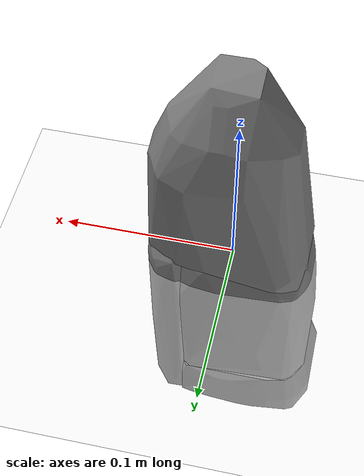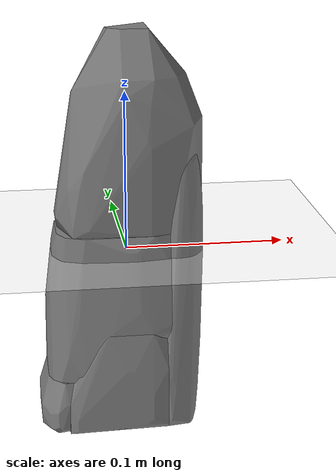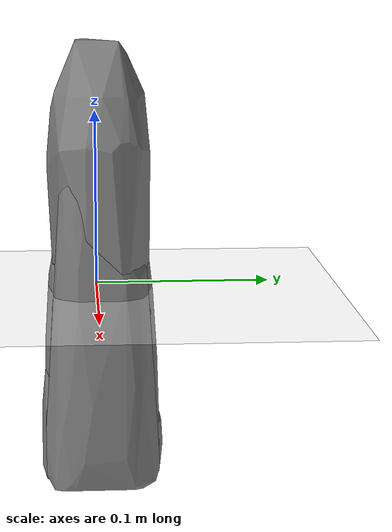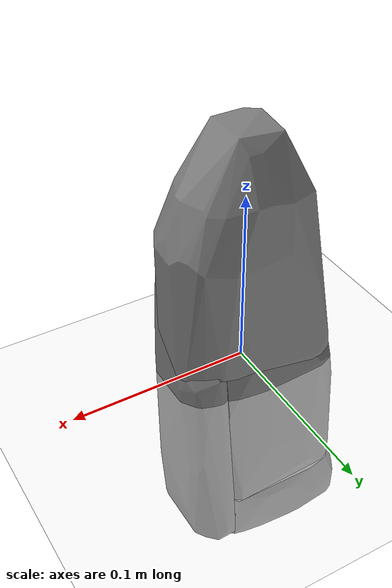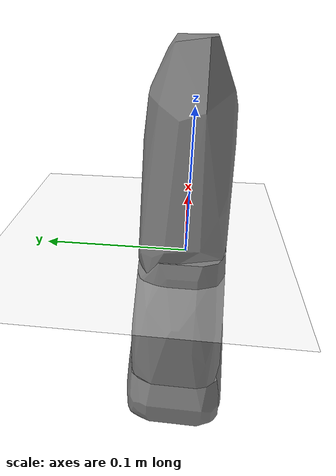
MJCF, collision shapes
<mujoco model="bleach_cleanser">
  <compiler meshdir="assets"/>
  <visual>
    <headlight ambient="0 0 0" diffuse="0 0 0" specular="1 1 1"/>
    <quality shadowsize="8192"/>
  </visual>

  <asset>
	<texture name="bleach_cleanser" file="assets/texture_map.png" type="2d"/>
    <material name="bleach_cleanser" texture="bleach_cleanser" specular="1" shininess="1"/>
    <mesh file="textured_simple.obj" scale="1 1 1"/>
    <mesh file="collision000.obj" scale="1 1 1"/>
    <mesh file="collision001.obj" scale="1 1 1"/>
    <mesh file="collision002.obj" scale="1 1 1"/>
    <mesh file="collision003.obj" scale="1 1 1"/>
    <mesh file="collision004.obj" scale="1 1 1"/>
    <material name="floor" reflectance=".1"/>
  </asset>

  <default>
    <default class="visual">
      <geom type="mesh" group="1" contype="0" conaffinity="0"/>
    </default>
    <default class="collision">
      <geom type="mesh" group="3" mass="0"/>
    </default>
  </default>

  <worldbody>
    <light pos=".4 -.4 .3" dir="-2 2 -1.5" diffuse=".6 .6 .6"/>
    <light pos="-.2 -.4 .3" dir="1 2 -1.5" diffuse=".6 .6 .6"/>
    <geom type="plane" size="5 5 .01" rgba="1 1 1 1" material="floor"/>
    <body name="bleach_cleanser">
      <freejoint/>
      <geom mesh="textured_simple" material="bleach_cleanser" class="visual"/>
	  <geom mesh="collision000" class="collision"/>
	  <geom mesh="collision001" class="collision"/>
	  <geom mesh="collision002" class="collision"/>
	  <geom mesh="collision003" class="collision"/>
	  <geom mesh="collision004" class="collision"/>
    </body>
  </worldbody>
</mujoco>
